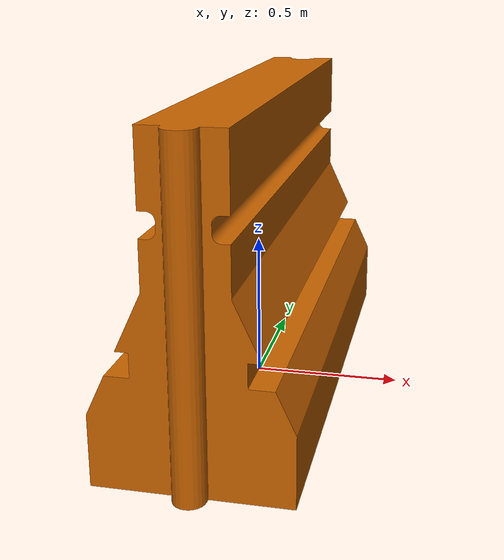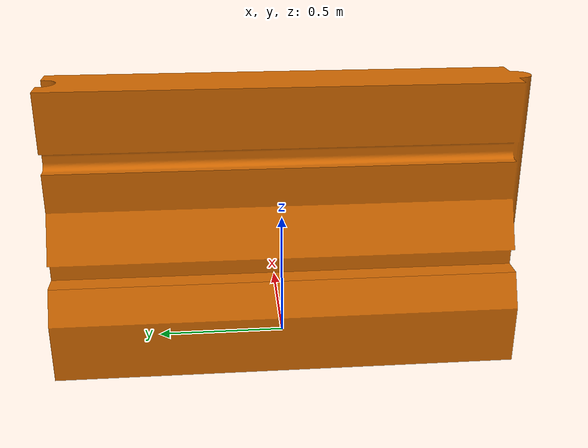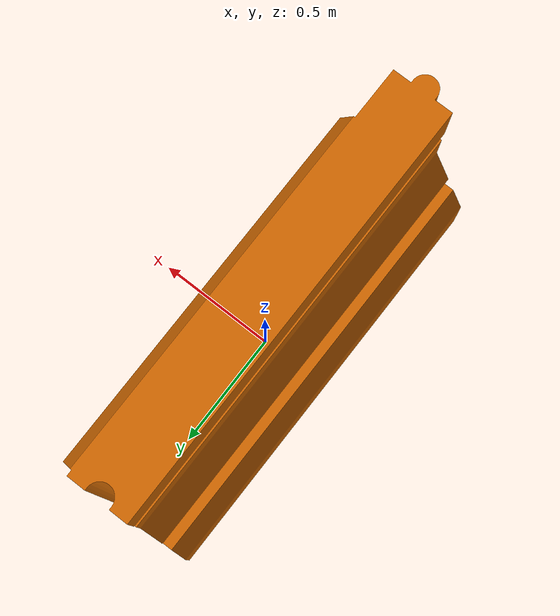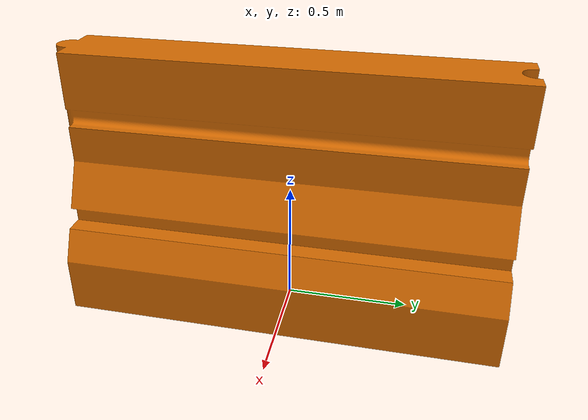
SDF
<?xml version="1.0" ?>
<sdf version="1.4">
  <model name="drc_practice_organge_jersey_barrier">
    <static>true</static>
    <link name="link">
      <visual name="visual">
        <geometry>
          <mesh>
            <uri>model://drc_practice_orange_jersey_barrier/meshes/jersey_barrier.dae</uri>
          </mesh>
        </geometry>
      </visual>

      <collision name="collision">
        <geometry>
          <mesh>
            <uri>model://drc_practice_orange_jersey_barrier/meshes/jersey_barrier.dae</uri>
          </mesh>
        </geometry>
      </collision>
    </link>
  </model>
</sdf>
